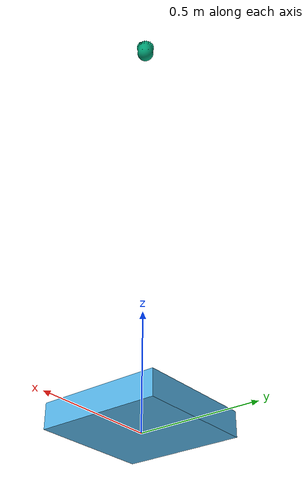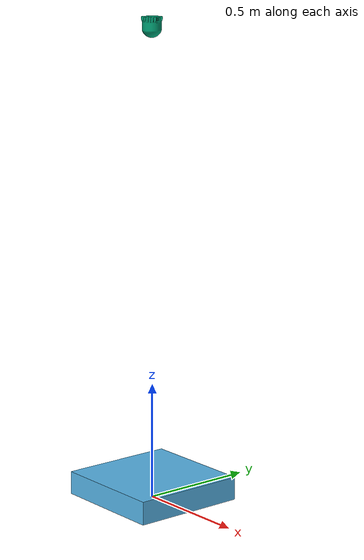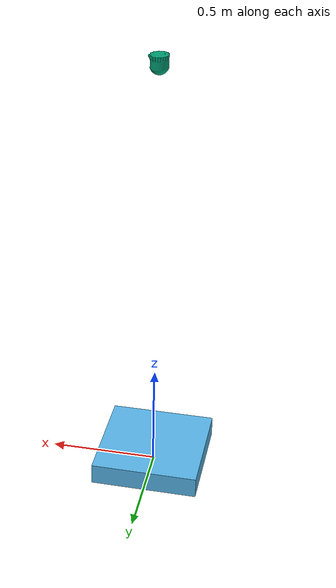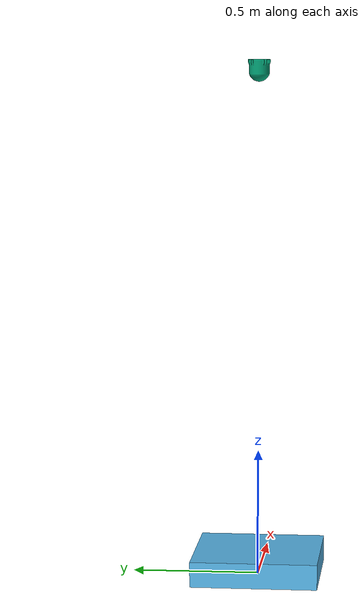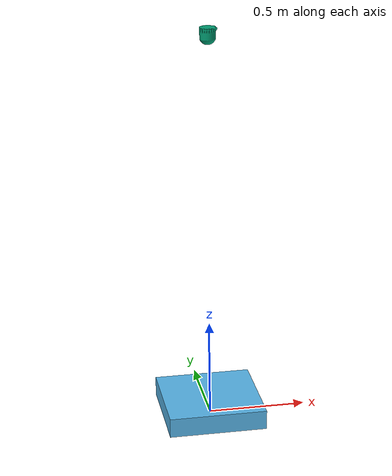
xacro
<?xml version="1.0"?>
<robot xmlns:xacro="http://www.ros.org/wiki/xacro" name="osdome_example">
  <xacro:arg name="gpu" default="false"/>
  <xacro:property name="gpu" value="$(arg gpu)" />

  <!-- Base Footprint -->
  <link name="base_footprint" />

  <!-- Base Link -->
  <joint name="footprint" type="fixed" >
   <parent link="base_footprint" />
    <child link="base_link" />
    <origin xyz="0 0 0.05" rpy="0 0 0" />
  </joint>
  <link name="base_link" >
    <visual>
      <geometry>
        <box size="0.5 0.5 0.1" />
      </geometry>
    </visual>
    <collision>
      <geometry>
        <box size="0.5 0.5 0.1" />
      </geometry>
    </collision>
    <inertial>
      <origin xyz="0 0 0"/>
      <mass value="10"/>
      <inertia ixx="3.0" ixy="0.0" ixz="0.0"
               iyy="3.0" iyz="0.0"
               izz="3.0" />
    </inertial>
  </link>

  <xacro:include filename="$(find ouster_description)/urdf/OSDome-64.urdf.xacro"/>
  <OSDome-64 parent="base_link" name="osdome_sensor" hz="10" samples="512" gpu="${gpu}">
    <origin xyz="0 0 2.0" rpy="0 3.1415926 0" />
  </OSDome-64>

</robot>

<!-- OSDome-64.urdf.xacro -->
<robot xmlns:xacro="http://www.ros.org/wiki/xacro" name="OSDome-64">
  <xacro:property name="M_PI" value="3.1415926535897931" />
  <xacro:macro name="OSDome-64" params="*origin parent:=base_link name:=osdome_sensor topic_points:=/osdome_cloud_node/points topic_imu:=/osdome_cloud_node/imu hz:=10 lasers:=64 samples:=1024 min_range:=0.04 max_range:=40.0 noise:=0.008 min_angle:=-${M_PI} max_angle:=${M_PI} lidar_link:=osdome_lidar imu_link:=osdome_imu vfov_min:=0.0 vfov_max:=1.4835 gpu:=false">

    <joint name="${name}_mount_joint" type="fixed">
      <xacro:insert_block name="origin" />
      <parent link="${parent}"/>
      <child link="${name}"/>
    </joint>

    <link name="${name}">
      <inertial>
         <mass value="0.47"/>
         <origin xyz="0 0 0.04" rpy="0 0 0" />
         <inertia ixx="0.00030456" ixy="0" ixz="0"
          iyy="0.00030456" iyz="0" izz="0.000437"/>
      </inertial>
      <collision name="base_collision">
         <origin xyz="0 0 0.042635" rpy="0 0 0" />
         <geometry>
 	        <cylinder radius="0.036" length="0.08527"/>
         </geometry>
      </collision>
      <visual name="base_visual">
         <origin xyz="0 0 0" rpy="0 0 0" />
         <geometry>
	         <mesh filename="package://ouster_description/meshes/osdome_64.dae" />
         </geometry>
      </visual>
    </link>

    <link name="${imu_link}" />

    <link name="${lidar_link}" />

    <joint name="${name}_imu_link_joint" type="fixed">
      <parent link="${name}" />
      <child link="${imu_link}" />
      <origin xyz="0.006253 -0.011775 0.007645" rpy="0 0 0" />
    </joint>
    <gazebo reference="${imu_link}">
    </gazebo>

    <joint name="${name}_lidar_link_joint" type="fixed">
      <parent link="${name}" />
      <child link="${lidar_link}" />
      <origin xyz="0.0 0.0 0.047824" rpy="0 0 0" />
    </joint>

    <!-- Gazebo requires the ouster_gazebo_plugins package -->
    <gazebo reference="${lidar_link}">
      <xacro:if value="${gpu}">
        <sensor type="gpu_ray" name="${name}-OSDome-64">
          <pose>0 0 0 0 0 0</pose>
          <visualize>false</visualize>
          <update_rate>${hz}</update_rate>
          <ray>
            <scan>
              <horizontal>
                <samples>${samples}</samples>
                <resolution>1</resolution>
                <min_angle>${min_angle}</min_angle>
                <max_angle>${max_angle}</max_angle>
              </horizontal>
              <vertical>
                <samples>${lasers}</samples>
                <resolution>1</resolution>
                <min_angle>${vfov_min}</min_angle>
                <max_angle>${vfov_max}</max_angle>
              </vertical>
            </scan>
            <range>
              <min>${min_range}</min>
              <max>${max_range}</max>
              <resolution>0.01</resolution>
            </range>
          </ray>
          <plugin name="gazebo_ros_laser_controller" filename="libgazebo_ros_ouster_gpu_laser.so">
            <topicName>${topic_points}</topicName>
            <frameName>${lidar_link}</frameName>
            <min_range>${min_range}</min_range>
            <max_range>${max_range}</max_range>
            <gaussianNoise>${noise}</gaussianNoise>
          </plugin>
        </sensor>
      </xacro:if>
      <xacro:unless value="${gpu}">
        <sensor type="ray" name="${name}-OSDome-64">
          <pose>0 0 0 0 0 0</pose>
          <visualize>false</visualize>
          <update_rate>${hz}</update_rate>
          <ray>
            <scan>
              <horizontal>
                <samples>${samples}</samples>
                <resolution>1</resolution>
                <min_angle>${min_angle}</min_angle>
                <max_angle>${max_angle}</max_angle>
              </horizontal>
              <vertical>
                <samples>${lasers}</samples>
                <resolution>1</resolution>
                <min_angle>${vfov_min}</min_angle>
                <max_angle>${vfov_max}</max_angle>
              </vertical>
            </scan>
            <range>
              <min>${min_range}</min>
              <max>${max_range}</max>
              <resolution>0.01</resolution>
            </range>
          </ray>
          <plugin name="gazebo_ros_laser_controller" filename="libgazebo_ros_ouster_laser.so">
            <topicName>${topic_points}</topicName>
            <frameName>${lidar_link}</frameName>
            <min_range>${min_range}</min_range>
            <max_range>${max_range}</max_range>
            <gaussianNoise>${noise}</gaussianNoise>
          </plugin>
        </sensor>
      </xacro:unless>
    </gazebo>

    <!-- IMU -->
  <gazebo>
    <plugin name="imu_controller" filename="libhector_gazebo_ros_imu.so">
      <robotNamespace>/</robotNamespace>
      <updateRate>100.0</updateRate>
      <bodyName>${imu_link}</bodyName>
      <topicName>${topic_imu}</topicName>
      <accelDrift>0.005 0.005 0.005</accelDrift>
      <accelGaussianNoise>0.005 0.005 0.005</accelGaussianNoise>
      <rateDrift>0.005 0.005 0.005 </rateDrift>
      <rateGaussianNoise>0.005 0.005 0.005 </rateGaussianNoise>
      <headingDrift>0.005</headingDrift>
      <headingGaussianNoise>0.005</headingGaussianNoise>
    </plugin>
  </gazebo>

  </xacro:macro>
</robot>
